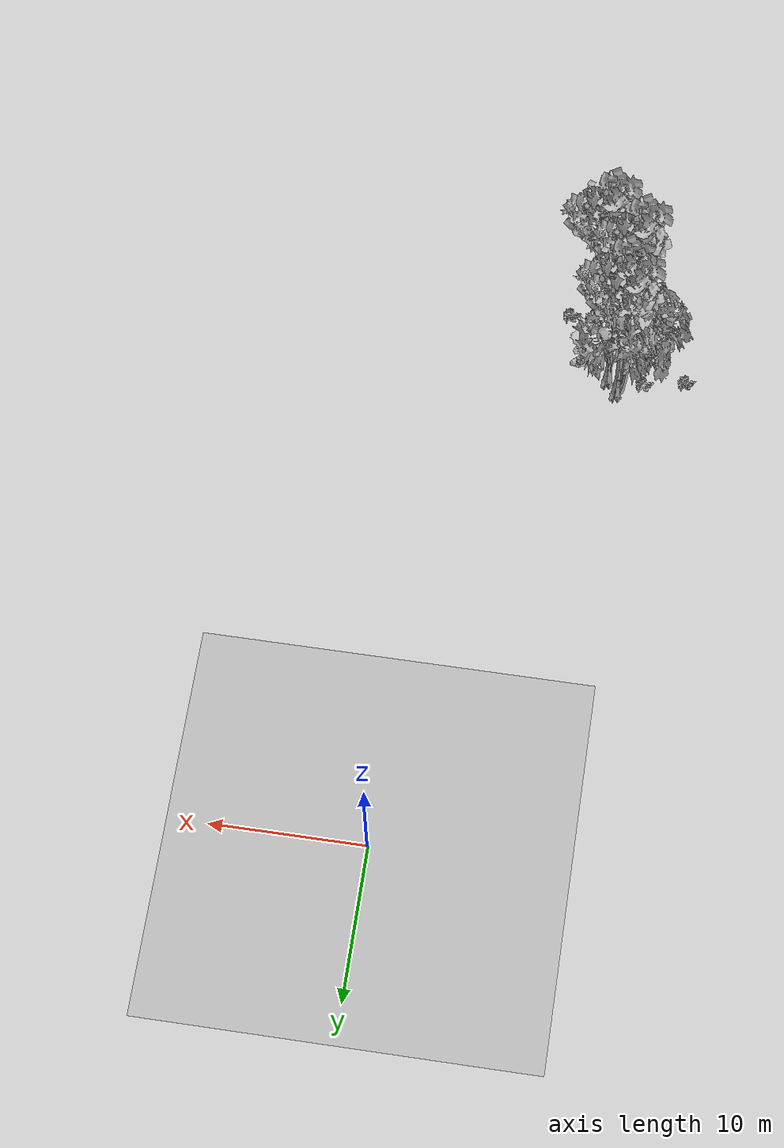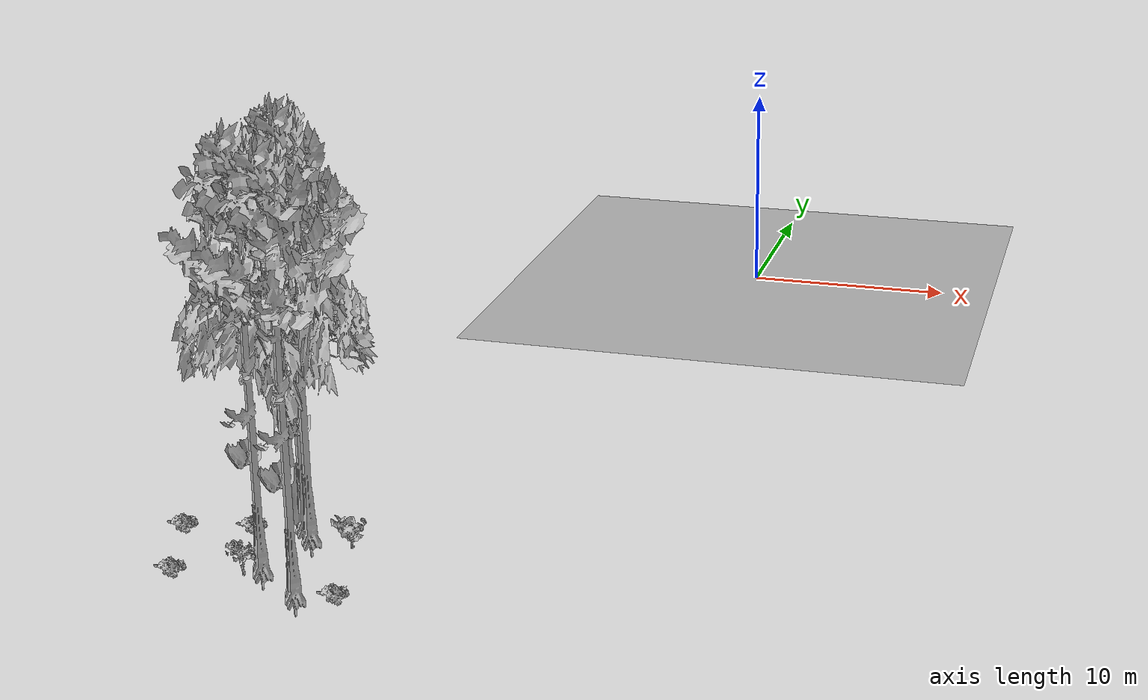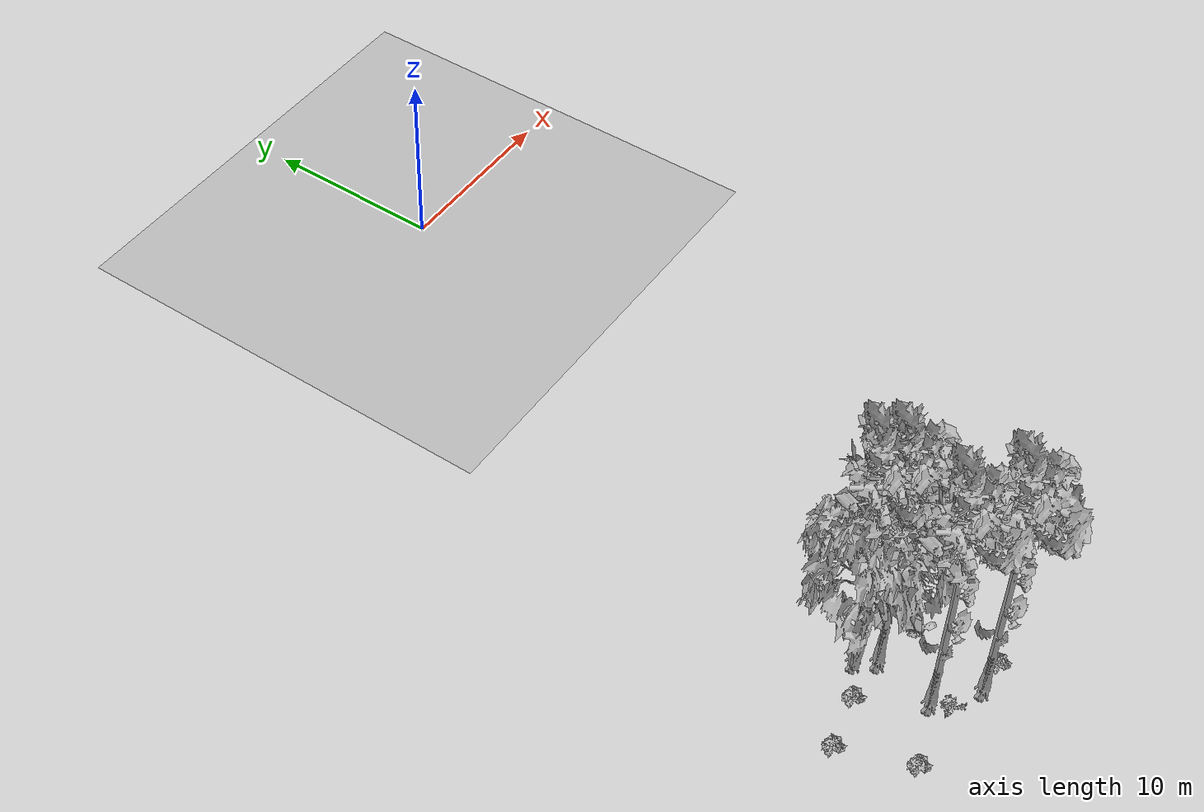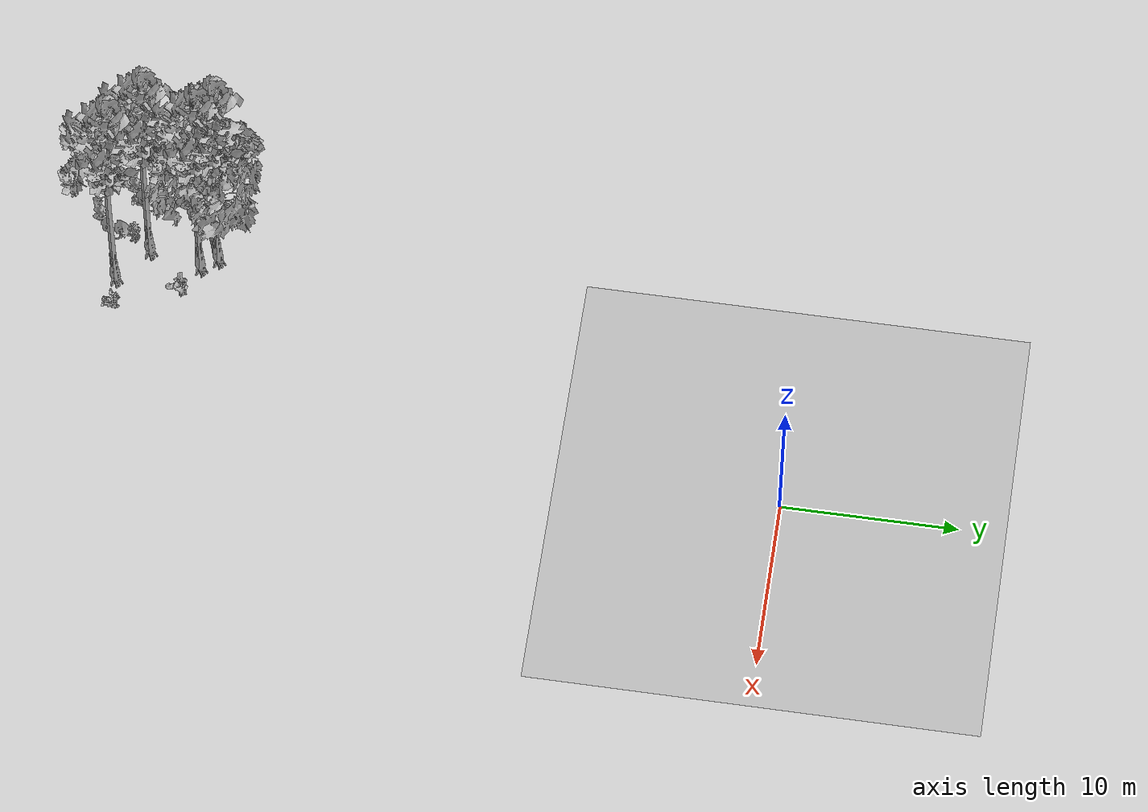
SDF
<sdf version="1.7">
 <world name="default">
  <model name="ground_plane">
   <static>1</static>
   <link name="link">
    <collision name="collision">
     <pose>-50 0 0 0 -0 0</pose>
     <geometry><plane><normal>0 0 1</normal><size>80 80</size></plane></geometry>
     <surface><contact><ode><min_depth>0.01</min_depth><max_vel>0</max_vel></ode></contact></surface>
    </collision>
    <visual name="grass">
     <cast_shadows>0</cast_shadows>
     <geometry>
      <mesh>
       <scale>0.46714285714285714 0.46714285714285714 0.1</scale>
       <uri>file://grass_plane/meshes/grass_plane.dae</uri>
      </mesh>
     </geometry>
    </visual>
   </link>
  </model>
  <model name="Tree 133">
   <static>1</static>
   <pose>-11.843517680848038 -33.82651815579115 0 1.57079 -0 0</pose>
   <link name="link">
    <collision name="collision">
     <geometry><mesh><scale>3.5 5 3.5</scale><uri>model://tree_2/meshes/tree_2.obj</uri></mesh></geometry>
    </collision>
    <visual name="visual">
     <geometry><mesh><scale>3.5 5 3.5</scale><uri>model://tree_2/meshes/tree_2.obj</uri></mesh></geometry>
    </visual>
   </link>
  </model>
  <model name="Tree 224">
   <static>1</static>
   <pose>-11.41210995745826 -33.61445233835865 0 1.57079 -0 0</pose>
   <link name="link">
    <collision name="collision">
     <geometry><mesh><scale>3.5 5 3.5</scale><uri>model://tree_9/meshes/tree_9.obj</uri></mesh></geometry>
    </collision>
    <visual name="visual">
     <geometry><mesh><scale>3.5 5 3.5</scale><uri>model://tree_9/meshes/tree_9.obj</uri></mesh></geometry>
    </visual>
   </link>
  </model>
  <model name="Tree 251">
   <static>1</static>
   <pose>-9.343142168244714 -39.1647090633121 0 1.57079 -0 0</pose>
   <link name="link">
    <collision name="collision">
     <geometry><mesh><scale>3.5 5 3.5</scale><uri>model://tree_9/meshes/tree_9.obj</uri></mesh></geometry>
    </collision>
    <visual name="visual">
     <geometry><mesh><scale>3.5 5 3.5</scale><uri>model://tree_9/meshes/tree_9.obj</uri></mesh></geometry>
    </visual>
   </link>
  </model>
  <model name="Tree 334">
   <static>1</static>
   <pose>-10.742452759564788 -34.5231170806842 0 1.57079 -0 0</pose>
   <link name="link">
    <collision name="collision">
     <geometry><mesh><scale>3.5 5 3.5</scale><uri>model://tree_9/meshes/tree_9.obj</uri></mesh></geometry>
    </collision>
    <visual name="visual">
     <geometry><mesh><scale>3.5 5 3.5</scale><uri>model://tree_9/meshes/tree_9.obj</uri></mesh></geometry>
    </visual>
   </link>
  </model>
  <model name="Tree 606">
   <static>1</static>
   <pose>-11.423299505746673 -37.54686706862486 0 1.57079 -0 0</pose>
   <link name="link">
    <collision name="collision">
     <geometry><mesh><scale>3.5 5 3.5</scale><uri>model://tree_9/meshes/tree_9.obj</uri></mesh></geometry>
    </collision>
    <visual name="visual">
     <geometry><mesh><scale>3.5 5 3.5</scale><uri>model://tree_9/meshes/tree_9.obj</uri></mesh></geometry>
    </visual>
   </link>
  </model>
  <model name="Bush 36">
   <static>1</static>
   <pose>-15.98154159475672 -35.10898618063334 0 1.57079 -0 0</pose>
   <link name="link">
    <collision name="collision">
     <geometry><mesh><scale>2 2 2</scale><uri>model://bush_2/meshes/bush_2.obj</uri></mesh></geometry>
     <surface><contact><collide_without_contact>false</collide_without_contact></contact></surface>
    </collision>
    <visual name="visual">
     <geometry><mesh><scale>2 2 2</scale><uri>model://bush_2/meshes/bush_2.obj</uri></mesh></geometry>
    </visual>
   </link>
  </model>
  <model name="Bush 142">
   <static>1</static>
   <pose>-13.21324205466426 -34.58455411181301 0 1.57079 -0 0</pose>
   <link name="link">
    <collision name="collision">
     <geometry><mesh><scale>2 2 2</scale><uri>model://bush_2/meshes/bush_2.obj</uri></mesh></geometry>
     <surface><contact><collide_without_contact>false</collide_without_contact></contact></surface>
    </collision>
    <visual name="visual">
     <geometry><mesh><scale>2 2 2</scale><uri>model://bush_2/meshes/bush_2.obj</uri></mesh></geometry>
    </visual>
   </link>
  </model>
  <model name="Bush 211">
   <static>1</static>
   <pose>-14.676526742377284 -38.68902405958457 0 1.57079 -0 0</pose>
   <link name="link">
    <collision name="collision">
     <geometry><mesh><scale>2 2 2</scale><uri>model://bush_2/meshes/bush_2.obj</uri></mesh></geometry>
     <surface><contact><collide_without_contact>false</collide_without_contact></contact></surface>
    </collision>
    <visual name="visual">
     <geometry><mesh><scale>2 2 2</scale><uri>model://bush_2/meshes/bush_2.obj</uri></mesh></geometry>
    </visual>
   </link>
  </model>
  <model name="Bush 288">
   <static>1</static>
   <pose>-11.72307681710118 -38.44796949822264 0 1.57079 -0 0</pose>
   <link name="link">
    <collision name="collision">
     <geometry><mesh><scale>2 2 2</scale><uri>model://bush_5/meshes/bush_5.obj</uri></mesh></geometry>
     <surface><contact><collide_without_contact>false</collide_without_contact></contact></surface>
    </collision>
    <visual name="visual">
     <geometry><mesh><scale>2 2 2</scale><uri>model://bush_5/meshes/bush_5.obj</uri></mesh></geometry>
    </visual>
   </link>
  </model>
  <model name="Bush 556">
   <static>1</static>
   <pose>-7.773449028857918 -39.14542432804633 0 1.57079 -0 0</pose>
   <link name="link">
    <collision name="collision">
     <geometry><mesh><scale>2 2 2</scale><uri>model://bush_2/meshes/bush_2.obj</uri></mesh></geometry>
     <surface><contact><collide_without_contact>false</collide_without_contact></contact></surface>
    </collision>
    <visual name="visual">
     <geometry><mesh><scale>2 2 2</scale><uri>model://bush_2/meshes/bush_2.obj</uri></mesh></geometry>
    </visual>
   </link>
  </model>
  <model name="Bush 560">
   <static>1</static>
   <pose>-8.627299672289716 -35.30246660673045 0 1.57079 -0 0</pose>
   <link name="link">
    <collision name="collision">
     <geometry><mesh><scale>2 2 2</scale><uri>model://bush_0/meshes/bush_0.obj</uri></mesh></geometry>
     <surface><contact><collide_without_contact>false</collide_without_contact></contact></surface>
    </collision>
    <visual name="visual">
     <geometry><mesh><scale>2 2 2</scale><uri>model://bush_0/meshes/bush_0.obj</uri></mesh></geometry>
    </visual>
   </link>
  </model>
 </world>
</sdf>
